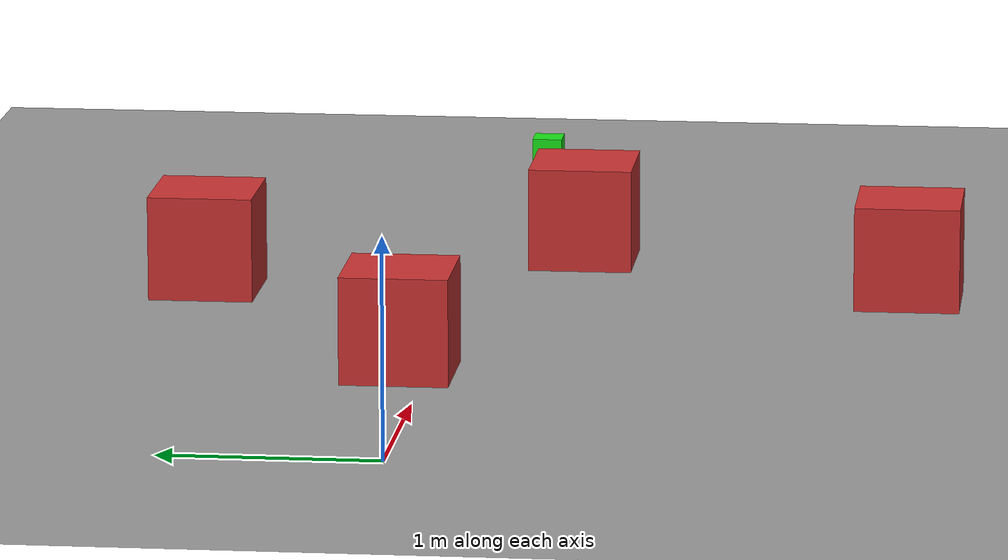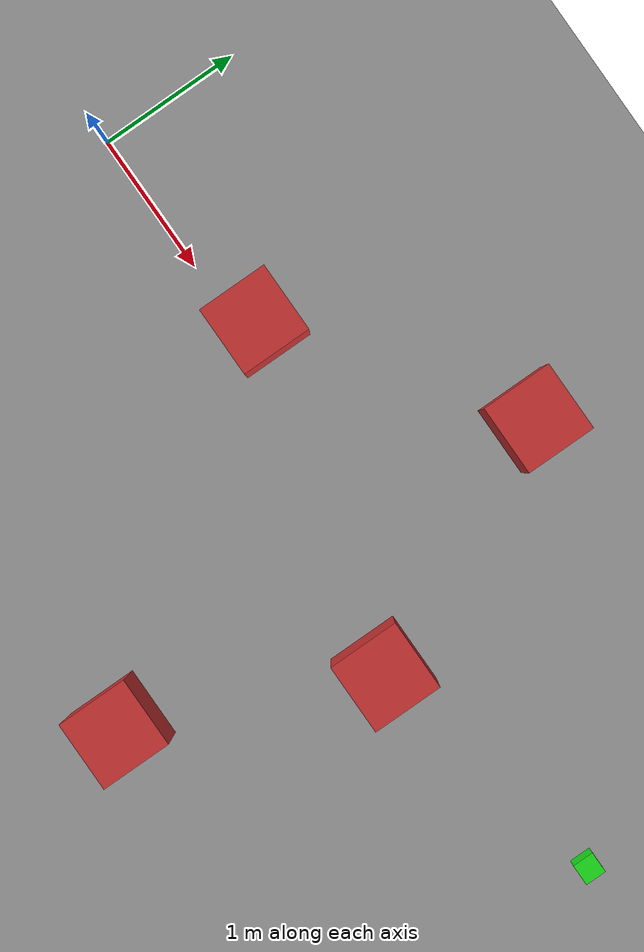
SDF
<?xml version="1.0" ?>
<sdf version="1.8">
  <world name="task_world">
    <physics name="1ms" type="ignored">
      <max_step_size>0.001</max_step_size>
      <real_time_factor>1.0</real_time_factor>
    </physics>

    <plugin filename="gz-sim-physics-system" name="gz::sim::systems::Physics"/>
    <plugin filename="gz-sim-user-commands-system" name="gz::sim::systems::UserCommands"/>
    <plugin filename="gz-sim-scene-broadcaster-system" name="gz::sim::systems::SceneBroadcaster"/>
    <plugin filename="gz-sim-sensors-system" name="gz::sim::systems::Sensors">
      <render_engine>ogre2</render_engine>
    </plugin>

    <light type="directional" name="sun">
      <cast_shadows>true</cast_shadows>
      <pose>0 0 10 0 0 0</pose>
      <diffuse>0.8 0.8 0.8 1</diffuse>
      <specular>0.2 0.2 0.2 1</specular>
      <attenuation>
        <range>1000</range>
        <constant>0.9</constant>
        <linear>0.01</linear>
        <quadratic>0.001</quadratic>
      </attenuation>
      <direction>-0.5 0.1 -0.9</direction>
    </light>

    <model name="ground_plane">
      <static>true</static>
      <link name="link">
        <collision name="collision">
          <geometry>
            <plane>
              <normal>0 0 1</normal>
              <size>100 100</size>
            </plane>
          </geometry>
          <surface>
            <friction>
              <ode>
                <mu>100</mu>
                <mu2>100</mu2>
              </ode>
            </friction>
          </surface>
        </collision>
        <visual name="visual">
          <geometry>
            <plane>
              <normal>0 0 1</normal>
              <size>100 100</size>
            </plane>
          </geometry>
          <material>
            <ambient>0.6 0.6 0.6 1</ambient>
            <diffuse>0.6 0.6 0.6 1</diffuse>
          </material>
        </visual>
      </link>
    </model>

    <!-- Obstacle 1 -->
    <model name="obstacle_1">
      <pose>3.11 1.24 0.25 0 0 0</pose>
      <static>true</static>
      <link name="link">
        <collision name="collision">
          <geometry>
            <box><size>0.5 0.5 0.5</size></box>
          </geometry>
        </collision>
        <visual name="visual">
          <geometry>
            <box><size>0.5 0.5 0.5</size></box>
          </geometry>
          <material>
            <ambient>0.8 0.2 0.2 1</ambient>
            <diffuse>0.8 0.2 0.2 1</diffuse>
          </material>
        </visual>
      </link>
    </model>

    <!-- Obstacle 2 -->
    <model name="obstacle_2">
      <pose>3.21 -2.12 0.25 0 0 0</pose>
      <static>true</static>
      <link name="link">
        <collision name="collision">
          <geometry>
            <box><size>0.5 0.5 0.5</size></box>
          </geometry>
        </collision>
        <visual name="visual">
          <geometry>
            <box><size>0.5 0.5 0.5</size></box>
          </geometry>
          <material>
            <ambient>0.8 0.2 0.2 1</ambient>
            <diffuse>0.8 0.2 0.2 1</diffuse>
          </material>
        </visual>
      </link>
    </model>

    <!-- Obstacle 3 -->
    <model name="obstacle_3">
      <pose>3.90 -0.50 0.25 0 0 0</pose>
      <static>true</static>
      <link name="link">
        <collision name="collision">
          <geometry>
            <box><size>0.5 0.5 0.5</size></box>
          </geometry>
        </collision>
        <visual name="visual">
          <geometry>
            <box><size>0.5 0.5 0.5</size></box>
          </geometry>
          <material>
            <ambient>0.8 0.2 0.2 1</ambient>
            <diffuse>0.8 0.2 0.2 1</diffuse>
          </material>
        </visual>
      </link>
    </model>

    <!-- Obstacle 4 -->
    <model name="obstacle_4">
      <pose>1.56 0.12 0.25 0 0 0</pose>
      <static>true</static>
      <link name="link">
        <collision name="collision">
          <geometry>
            <box><size>0.5 0.5 0.5</size></box>
          </geometry>
        </collision>
        <visual name="visual">
          <geometry>
            <box><size>0.5 0.5 0.5</size></box>
          </geometry>
          <material>
            <ambient>0.8 0.2 0.2 1</ambient>
            <diffuse>0.8 0.2 0.2 1</diffuse>
          </material>
        </visual>
      </link>
    </model>

    <!-- Target Box -->
    <model name="target_box">
      <pose>5.71 -0.14 0.15 0 0 0</pose>
      <static>false</static>
      <link name="link">
        <inertial>
          <mass>0.5</mass>
          <inertia>
            <ixx>0.002</ixx><ixy>0</ixy><ixz>0</ixz>
            <iyy>0.002</iyy><iyz>0</iyz>
            <izz>0.002</izz>
          </inertia>
        </inertial>
        <collision name="collision">
          <geometry>
            <box><size>0.15 0.15 0.15</size></box>
          </geometry>
          <surface>
            <friction>
              <ode>
                <mu>1.0</mu>
                <mu2>1.0</mu2>
              </ode>
            </friction>
          </surface>
        </collision>
        <visual name="visual">
          <geometry>
            <box><size>0.15 0.15 0.15</size></box>
          </geometry>
          <material>
            <ambient>0.1 0.9 0.1 1</ambient>
            <diffuse>0.1 0.9 0.1 1</diffuse>
          </material>
        </visual>
      </link>
      <!-- Pose Publisher for ground truth -->
      <plugin filename="gz-sim-pose-publisher-system" name="gz::sim::systems::PosePublisher">
        <publish_link_pose>false</publish_link_pose>
        <publish_model_pose>true</publish_model_pose>
        <publish_nested_model_pose>false</publish_nested_model_pose>
        <use_pose_vector_msg>false</use_pose_vector_msg>
        <update_frequency>10</update_frequency>
      </plugin>
    </model>

  </world>
</sdf>
